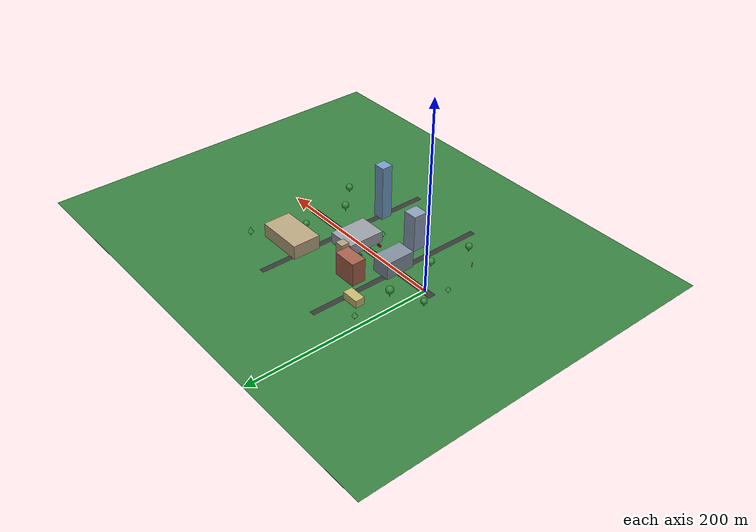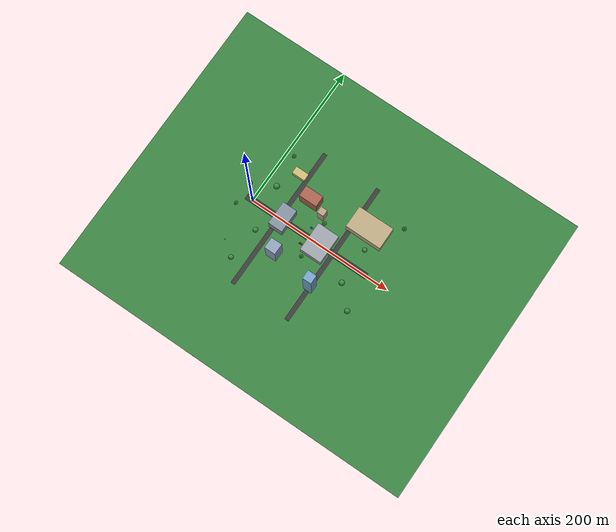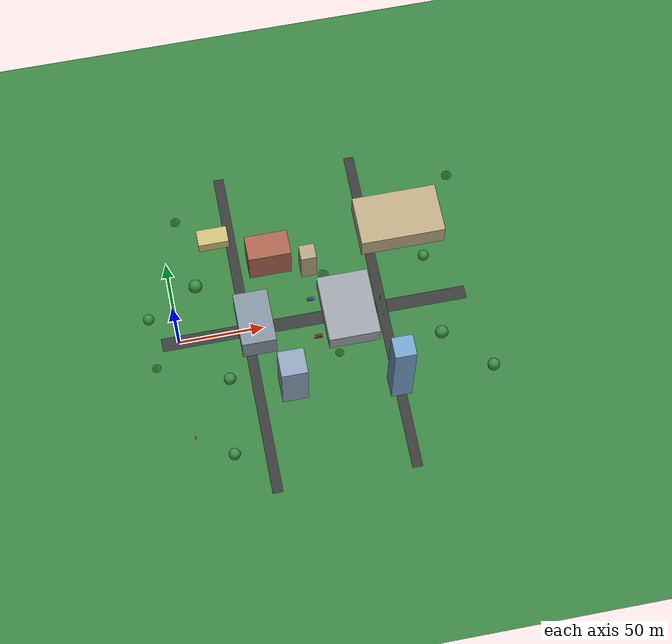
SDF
<sdf version="1.9">
 <world name="iris_runway_urban">
  <physics name="1ms" type="ignore">
   <max_step_size>0.001</max_step_size>
   <real_time_factor>1.0</real_time_factor>
  </physics>
  <plugin filename="gz-sim-physics-system" name="gz::sim::systems::Physics"/>
  <plugin filename="gz-sim-sensors-system" name="gz::sim::systems::Sensors">
   <render_engine>ogre2</render_engine>
  </plugin>
  <plugin filename="gz-sim-user-commands-system" name="gz::sim::systems::UserCommands"/>
  <plugin filename="gz-sim-scene-broadcaster-system" name="gz::sim::systems::SceneBroadcaster"/>
  <plugin filename="gz-sim-imu-system" name="gz::sim::systems::Imu"/>
  <plugin filename="gz-sim-navsat-system" name="gz::sim::systems::NavSat"/>
  <scene><ambient>0.85 0.88 0.92</ambient><background>0.65 0.78 0.92</background></scene>
  <spherical_coordinates>
   <latitude_deg>-35.363262</latitude_deg>
   <longitude_deg>149.165237</longitude_deg>
   <elevation>584</elevation>
   <heading_deg>0</heading_deg>
   <surface_model>EARTH_WGS84</surface_model>
  </spherical_coordinates>
  <light type="directional" name="sun">
   <pose>0 0 50 0 0 0</pose>
   <diffuse>0.95 0.93 0.88 1</diffuse>
   <specular>0.30 0.30 0.30 1</specular>
   <attenuation>
    <range>2000</range>
    <constant>0.9</constant>
    <linear>0.005</linear>
    <quadratic>0.0005</quadratic>
   </attenuation>
   <direction>-0.5 0.2 -0.85</direction>
  </light>
  <model name="urban_ground">
   <static>true</static>
   <link name="link">
    <visual name="field">
     <pose>100 0 -0.03 0 0 0</pose>
     <geometry><box><size>500 400 0.05</size></box></geometry>
     <material><ambient>0.20 0.45 0.22 1</ambient><diffuse>0.22 0.50 0.25 1</diffuse></material>
    </visual>
   </link>
  </model>
  <model name="rf_hangar_blocker">
   <static>true</static>
   <pose>45 0 9 0 0 0</pose>
   <link name="link">
    <collision name="collision"><geometry><box><size>20 32 18</size></box></geometry></collision>
    <visual name="visual">
     <geometry><box><size>20 32 18</size></box></geometry>
     <material>
      <ambient>0.50 0.56 0.61 1</ambient>
      <diffuse>0.50 0.56 0.61 1</diffuse>
      <specular>0.10 0.10 0.10 1</specular>
     </material>
    </visual>
   </link>
  </model>
  <model name="rf_control_tower">
   <static>true</static>
   <pose>82 32 12 0 0 0</pose>
   <link name="link">
    <collision name="collision"><geometry><box><size>9 9 24</size></box></geometry></collision>
    <visual name="visual">
     <geometry><box><size>9 9 24</size></box></geometry>
     <material><ambient>0.68 0.60 0.48 1</ambient><diffuse>0.70 0.62 0.50 1</diffuse></material>
    </visual>
   </link>
  </model>
  <model name="rf_gcs_mast">
   <static>true</static>
   <pose>0 -60 2.5 0 0 0</pose>
   <link name="link">
    <visual name="mast">
     <geometry><cylinder><radius>0.45</radius><length>5</length></cylinder></geometry>
     <material>
      <ambient>0.95 0.58 0.12 1</ambient>
      <diffuse>0.95 0.58 0.12 1</diffuse>
      <emissive>0.20 0.08 0.00 1</emissive>
     </material>
    </visual>
   </link>
  </model>
  <model name="bldg_office_tower">
   <static>true</static>
   <pose>60 -40 20 0 0 0</pose>
   <link name="link">
    <collision name="collision"><geometry><box><size>15 15 40</size></box></geometry></collision>
    <visual name="visual">
     <geometry><box><size>15 15 40</size></box></geometry>
     <material>
      <ambient>0.42 0.46 0.55 1</ambient>
      <diffuse>0.55 0.62 0.72 1</diffuse>
      <specular>0.40 0.40 0.50 1</specular>
     </material>
    </visual>
   </link>
  </model>
  <model name="bldg_apartment_block">
   <static>true</static>
   <pose>60 40 12.5 0 0 0</pose>
   <link name="link">
    <collision name="collision"><geometry><box><size>25 15 25</size></box></geometry></collision>
    <visual name="visual">
     <geometry><box><size>25 15 25</size></box></geometry>
     <material><ambient>0.55 0.32 0.25 1</ambient><diffuse>0.65 0.38 0.30 1</diffuse></material>
    </visual>
   </link>
  </model>
  <model name="bldg_warehouse">
   <static>true</static>
   <pose>100 0 6 0 0 0</pose>
   <link name="link">
    <collision name="collision"><geometry><box><size>30 40 12</size></box></geometry></collision>
    <visual name="visual">
     <geometry><box><size>30 40 12</size></box></geometry>
     <material>
      <ambient>0.45 0.48 0.50 1</ambient>
      <diffuse>0.60 0.62 0.65 1</diffuse>
      <specular>0.30 0.30 0.30 1</specular>
     </material>
    </visual>
   </link>
  </model>
  <model name="bldg_residential_tower">
   <static>true</static>
   <pose>120 -50 30 0 0 0</pose>
   <link name="link">
    <collision name="collision"><geometry><box><size>12 12 60</size></box></geometry></collision>
    <visual name="visual">
     <geometry><box><size>12 12 60</size></box></geometry>
     <material>
      <ambient>0.30 0.42 0.55 1</ambient>
      <diffuse>0.45 0.62 0.78 1</diffuse>
      <specular>0.55 0.65 0.75 1</specular>
      <emissive>0.05 0.07 0.10 1</emissive>
     </material>
    </visual>
   </link>
  </model>
  <model name="bldg_mall">
   <static>true</static>
   <pose>140 50 7.5 0 0 0</pose>
   <link name="link">
    <collision name="collision"><geometry><box><size>50 30 15</size></box></geometry></collision>
    <visual name="visual">
     <geometry><box><size>50 30 15</size></box></geometry>
     <material><ambient>0.62 0.55 0.42 1</ambient><diffuse>0.72 0.65 0.50 1</diffuse></material>
    </visual>
   </link>
  </model>
  <model name="bldg_commercial_1">
   <static>true</static>
   <pose>30 60 4 0 0 0</pose>
   <link name="link">
    <collision name="collision"><geometry><box><size>18 10 8</size></box></geometry></collision>
    <visual name="visual">
     <geometry><box><size>18 10 8</size></box></geometry>
     <material><ambient>0.70 0.65 0.40 1</ambient><diffuse>0.78 0.72 0.45 1</diffuse></material>
    </visual>
   </link>
  </model>
  <model name="road_main_ns">
   <static>true</static>
   <pose>80 0 0.005 0 0 0</pose>
   <link name="link">
    <visual name="surface">
     <geometry><box><size>180 8 0.01</size></box></geometry>
     <material><ambient>0.18 0.18 0.18 1</ambient><diffuse>0.22 0.22 0.22 1</diffuse></material>
    </visual>
   </link>
  </model>
  <model name="road_cross_n">
   <static>true</static>
   <pose>120 0 0.006 0 0 0</pose>
   <link name="link">
    <visual name="surface">
     <geometry><box><size>6 200 0.01</size></box></geometry>
     <material><ambient>0.18 0.18 0.18 1</ambient><diffuse>0.22 0.22 0.22 1</diffuse></material>
    </visual>
   </link>
  </model>
  <model name="road_cross_s">
   <static>true</static>
   <pose>40 0 0.006 0 0 0</pose>
   <link name="link">
    <visual name="surface">
     <geometry><box><size>6 200 0.01</size></box></geometry>
     <material><ambient>0.18 0.18 0.18 1</ambient><diffuse>0.22 0.22 0.22 1</diffuse></material>
    </visual>
   </link>
  </model>
  <model name="tree_01">
   <static>true</static>
   <pose>25 -30 0 0 0 0</pose>
   <link name="link">
    <visual name="trunk">
     <pose>0 0 1.5 0 0 0</pose>
     <geometry><cylinder><radius>0.30</radius><length>3.0</length></cylinder></geometry>
     <material><ambient>0.35 0.22 0.12 1</ambient><diffuse>0.40 0.26 0.15 1</diffuse></material>
    </visual>
    <visual name="canopy">
     <pose>0 0 6.0 0 0 0</pose>
     <geometry><sphere><radius>3.5</radius></sphere></geometry>
     <material><ambient>0.18 0.45 0.20 1</ambient><diffuse>0.22 0.55 0.25 1</diffuse></material>
    </visual>
   </link>
  </model>
  <model name="tree_02">
   <static>true</static>
   <pose>15 30 0 0 0 0</pose>
   <link name="link">
    <visual name="trunk">
     <pose>0 0 1.8 0 0 0</pose>
     <geometry><cylinder><radius>0.32</radius><length>3.6</length></cylinder></geometry>
     <material><ambient>0.35 0.22 0.12 1</ambient><diffuse>0.40 0.26 0.15 1</diffuse></material>
    </visual>
    <visual name="canopy">
     <pose>0 0 7.5 0 0 0</pose>
     <geometry><sphere><radius>4.0</radius></sphere></geometry>
     <material><ambient>0.18 0.45 0.20 1</ambient><diffuse>0.22 0.55 0.25 1</diffuse></material>
    </visual>
   </link>
  </model>
  <model name="tree_03">
   <static>true</static>
   <pose>90 25 0 0 0 0</pose>
   <link name="link">
    <visual name="trunk">
     <pose>0 0 1.6 0 0 0</pose>
     <geometry><cylinder><radius>0.28</radius><length>3.2</length></cylinder></geometry>
     <material><ambient>0.35 0.22 0.12 1</ambient><diffuse>0.40 0.26 0.15 1</diffuse></material>
    </visual>
    <visual name="canopy">
     <pose>0 0 6.5 0 0 0</pose>
     <geometry><cone><radius>3.0</radius><length>5.0</length></cone></geometry>
     <material><ambient>0.20 0.50 0.22 1</ambient><diffuse>0.24 0.58 0.26 1</diffuse></material>
    </visual>
   </link>
  </model>
  <model name="tree_04">
   <static>true</static>
   <pose>90 -25 0 0 0 0</pose>
   <link name="link">
    <visual name="trunk">
     <pose>0 0 1.4 0 0 0</pose>
     <geometry><cylinder><radius>0.26</radius><length>2.8</length></cylinder></geometry>
     <material><ambient>0.35 0.22 0.12 1</ambient><diffuse>0.40 0.26 0.15 1</diffuse></material>
    </visual>
    <visual name="canopy">
     <pose>0 0 5.5 0 0 0</pose>
     <geometry><cone><radius>2.5</radius><length>4.5</length></cone></geometry>
     <material><ambient>0.20 0.50 0.22 1</ambient><diffuse>0.24 0.58 0.26 1</diffuse></material>
    </visual>
   </link>
  </model>
  <model name="tree_05">
   <static>true</static>
   <pose>150 -25 0 0 0 0</pose>
   <link name="link">
    <visual name="trunk">
     <pose>0 0 1.7 0 0 0</pose>
     <geometry><cylinder><radius>0.30</radius><length>3.4</length></cylinder></geometry>
     <material><ambient>0.35 0.22 0.12 1</ambient><diffuse>0.40 0.26 0.15 1</diffuse></material>
    </visual>
    <visual name="canopy">
     <pose>0 0 7.0 0 0 0</pose>
     <geometry><sphere><radius>3.8</radius></sphere></geometry>
     <material><ambient>0.18 0.45 0.20 1</ambient><diffuse>0.22 0.55 0.25 1</diffuse></material>
    </visual>
   </link>
  </model>
  <model name="tree_06">
   <static>true</static>
   <pose>150 25 0 0 0 0</pose>
   <link name="link">
    <visual name="trunk">
     <pose>0 0 1.5 0 0 0</pose>
     <geometry><cylinder><radius>0.28</radius><length>3.0</length></cylinder></geometry>
     <material><ambient>0.35 0.22 0.12 1</ambient><diffuse>0.40 0.26 0.15 1</diffuse></material>
    </visual>
    <visual name="canopy">
     <pose>0 0 6.0 0 0 0</pose>
     <geometry><sphere><radius>3.2</radius></sphere></geometry>
     <material><ambient>0.18 0.45 0.20 1</ambient><diffuse>0.22 0.55 0.25 1</diffuse></material>
    </visual>
   </link>
  </model>
  <model name="tree_07">
   <static>true</static>
   <pose>20 -75 0 0 0 0</pose>
   <link name="link">
    <visual name="trunk">
     <pose>0 0 1.5 0 0 0</pose>
     <geometry><cylinder><radius>0.30</radius><length>3.0</length></cylinder></geometry>
     <material><ambient>0.35 0.22 0.12 1</ambient><diffuse>0.40 0.26 0.15 1</diffuse></material>
    </visual>
    <visual name="canopy">
     <pose>0 0 6.0 0 0 0</pose>
     <geometry><sphere><radius>3.4</radius></sphere></geometry>
     <material><ambient>0.18 0.45 0.20 1</ambient><diffuse>0.22 0.55 0.25 1</diffuse></material>
    </visual>
   </link>
  </model>
  <model name="tree_08">
   <static>true</static>
   <pose>10 75 0 0 0 0</pose>
   <link name="link">
    <visual name="trunk">
     <pose>0 0 1.5 0 0 0</pose>
     <geometry><cylinder><radius>0.30</radius><length>3.0</length></cylinder></geometry>
     <material><ambient>0.35 0.22 0.12 1</ambient><diffuse>0.40 0.26 0.15 1</diffuse></material>
    </visual>
    <visual name="canopy">
     <pose>0 0 6.0 0 0 0</pose>
     <geometry><cone><radius>2.8</radius><length>5.0</length></cone></geometry>
     <material><ambient>0.20 0.50 0.22 1</ambient><diffuse>0.24 0.58 0.26 1</diffuse></material>
    </visual>
   </link>
  </model>
  <model name="tree_09">
   <static>true</static>
   <pose>175 -50 0 0 0 0</pose>
   <link name="link">
    <visual name="trunk">
     <pose>0 0 1.6 0 0 0</pose>
     <geometry><cylinder><radius>0.30</radius><length>3.2</length></cylinder></geometry>
     <material><ambient>0.35 0.22 0.12 1</ambient><diffuse>0.40 0.26 0.15 1</diffuse></material>
    </visual>
    <visual name="canopy">
     <pose>0 0 6.5 0 0 0</pose>
     <geometry><sphere><radius>3.6</radius></sphere></geometry>
     <material><ambient>0.18 0.45 0.20 1</ambient><diffuse>0.22 0.55 0.25 1</diffuse></material>
    </visual>
   </link>
  </model>
  <model name="tree_10">
   <static>true</static>
   <pose>175 75 0 0 0 0</pose>
   <link name="link">
    <visual name="trunk">
     <pose>0 0 1.7 0 0 0</pose>
     <geometry><cylinder><radius>0.32</radius><length>3.4</length></cylinder></geometry>
     <material><ambient>0.35 0.22 0.12 1</ambient><diffuse>0.40 0.26 0.15 1</diffuse></material>
    </visual>
    <visual name="canopy">
     <pose>0 0 7.0 0 0 0</pose>
     <geometry><cone><radius>3.0</radius><length>5.5</length></cone></geometry>
     <material><ambient>0.20 0.50 0.22 1</ambient><diffuse>0.24 0.58 0.26 1</diffuse></material>
    </visual>
   </link>
  </model>
  <model name="tree_11">
   <static>true</static>
   <pose>-15 15 0 0 0 0</pose>
   <link name="link">
    <visual name="trunk">
     <pose>0 0 1.5 0 0 0</pose>
     <geometry><cylinder><radius>0.28</radius><length>3.0</length></cylinder></geometry>
     <material><ambient>0.35 0.22 0.12 1</ambient><diffuse>0.40 0.26 0.15 1</diffuse></material>
    </visual>
    <visual name="canopy">
     <pose>0 0 5.8 0 0 0</pose>
     <geometry><sphere><radius>3.2</radius></sphere></geometry>
     <material><ambient>0.18 0.45 0.20 1</ambient><diffuse>0.22 0.55 0.25 1</diffuse></material>
    </visual>
   </link>
  </model>
  <model name="tree_12">
   <static>true</static>
   <pose>-15 -15 0 0 0 0</pose>
   <link name="link">
    <visual name="trunk">
     <pose>0 0 1.5 0 0 0</pose>
     <geometry><cylinder><radius>0.28</radius><length>3.0</length></cylinder></geometry>
     <material><ambient>0.35 0.22 0.12 1</ambient><diffuse>0.40 0.26 0.15 1</diffuse></material>
    </visual>
    <visual name="canopy">
     <pose>0 0 5.8 0 0 0</pose>
     <geometry><cone><radius>2.6</radius><length>4.5</length></cone></geometry>
     <material><ambient>0.20 0.50 0.22 1</ambient><diffuse>0.24 0.58 0.26 1</diffuse></material>
    </visual>
   </link>
  </model>
  <model name="streetlight_01">
   <static>true</static>
   <pose>40 5 0 0 0 0</pose>
   <link name="link">
    <visual name="pole">
     <pose>0 0 3.0 0 0 0</pose>
     <geometry><cylinder><radius>0.10</radius><length>6.0</length></cylinder></geometry>
     <material><ambient>0.25 0.25 0.30 1</ambient><diffuse>0.30 0.30 0.35 1</diffuse></material>
    </visual>
    <visual name="lamp">
     <pose>0 0 6.2 0 0 0</pose>
     <geometry><sphere><radius>0.30</radius></sphere></geometry>
     <material>
      <ambient>0.92 0.85 0.60 1</ambient>
      <diffuse>0.95 0.88 0.65 1</diffuse>
      <emissive>0.60 0.55 0.30 1</emissive>
     </material>
    </visual>
   </link>
  </model>
  <model name="streetlight_02">
   <static>true</static>
   <pose>40 -5 0 0 0 0</pose>
   <link name="link">
    <visual name="pole">
     <pose>0 0 3.0 0 0 0</pose>
     <geometry><cylinder><radius>0.10</radius><length>6.0</length></cylinder></geometry>
     <material><ambient>0.25 0.25 0.30 1</ambient><diffuse>0.30 0.30 0.35 1</diffuse></material>
    </visual>
    <visual name="lamp">
     <pose>0 0 6.2 0 0 0</pose>
     <geometry><sphere><radius>0.30</radius></sphere></geometry>
     <material>
      <ambient>0.92 0.85 0.60 1</ambient>
      <diffuse>0.95 0.88 0.65 1</diffuse>
      <emissive>0.60 0.55 0.30 1</emissive>
     </material>
    </visual>
   </link>
  </model>
  <model name="streetlight_03">
   <static>true</static>
   <pose>120 5 0 0 0 0</pose>
   <link name="link">
    <visual name="pole">
     <pose>0 0 3.0 0 0 0</pose>
     <geometry><cylinder><radius>0.10</radius><length>6.0</length></cylinder></geometry>
     <material><ambient>0.25 0.25 0.30 1</ambient><diffuse>0.30 0.30 0.35 1</diffuse></material>
    </visual>
    <visual name="lamp">
     <pose>0 0 6.2 0 0 0</pose>
     <geometry><sphere><radius>0.30</radius></sphere></geometry>
     <material>
      <ambient>0.92 0.85 0.60 1</ambient>
      <diffuse>0.95 0.88 0.65 1</diffuse>
      <emissive>0.60 0.55 0.30 1</emissive>
     </material>
    </visual>
   </link>
  </model>
  <model name="streetlight_04">
   <static>true</static>
   <pose>120 -5 0 0 0 0</pose>
   <link name="link">
    <visual name="pole">
     <pose>0 0 3.0 0 0 0</pose>
     <geometry><cylinder><radius>0.10</radius><length>6.0</length></cylinder></geometry>
     <material><ambient>0.25 0.25 0.30 1</ambient><diffuse>0.30 0.30 0.35 1</diffuse></material>
    </visual>
    <visual name="lamp">
     <pose>0 0 6.2 0 0 0</pose>
     <geometry><sphere><radius>0.30</radius></sphere></geometry>
     <material>
      <ambient>0.92 0.85 0.60 1</ambient>
      <diffuse>0.95 0.88 0.65 1</diffuse>
      <emissive>0.60 0.55 0.30 1</emissive>
     </material>
    </visual>
   </link>
  </model>
  <model name="vehicle_01">
   <static>true</static>
   <pose>80 12 0.7 0 0 0</pose>
   <link name="link">
    <visual name="body">
     <pose>0 0 0.6 0 0 0</pose>
     <geometry><box><size>4.2 1.7 1.2</size></box></geometry>
     <material>
      <ambient>0.20 0.30 0.55 1</ambient>
      <diffuse>0.25 0.40 0.70 1</diffuse>
      <specular>0.5 0.5 0.5 1</specular>
     </material>
    </visual>
    <visual name="roof">
     <pose>-0.3 0 1.4 0 0 0</pose>
     <geometry><box><size>2.4 1.5 0.4</size></box></geometry>
     <material><ambient>0.15 0.20 0.30 1</ambient><diffuse>0.20 0.25 0.40 1</diffuse></material>
    </visual>
   </link>
  </model>
  <model name="vehicle_02">
   <static>true</static>
   <pose>80 -12 0.7 0 0 3.14159</pose>
   <link name="link">
    <visual name="body">
     <pose>0 0 0.6 0 0 0</pose>
     <geometry><box><size>4.6 1.8 1.4</size></box></geometry>
     <material>
      <ambient>0.55 0.15 0.15 1</ambient>
      <diffuse>0.70 0.20 0.20 1</diffuse>
      <specular>0.5 0.5 0.5 1</specular>
     </material>
    </visual>
    <visual name="roof">
     <pose>-0.2 0 1.6 0 0 0</pose>
     <geometry><box><size>2.8 1.6 0.4</size></box></geometry>
     <material><ambient>0.30 0.10 0.10 1</ambient><diffuse>0.40 0.15 0.15 1</diffuse></material>
    </visual>
   </link>
  </model>
 </world>
</sdf>
